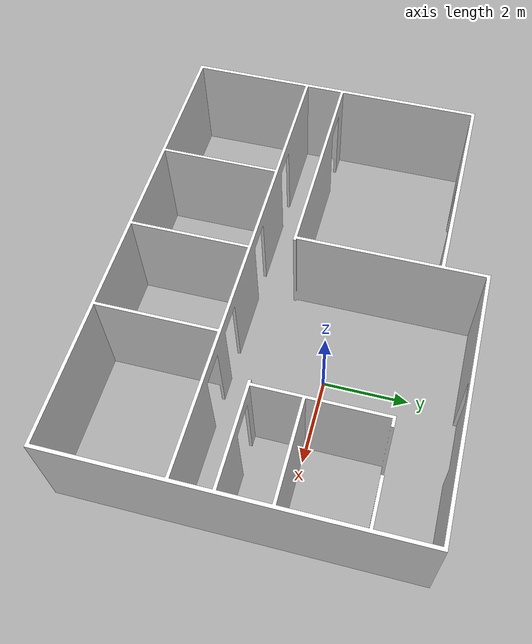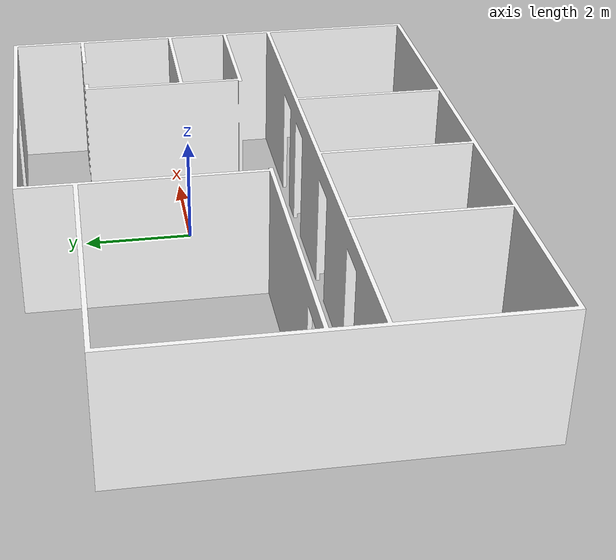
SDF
<?xml version="1.0" ?>
<sdf version="1.5">
  <model name="Office_3E">
    <link name="link">
      <collision name="collision">
        <geometry>
          <mesh>
            <uri>model://office_3E/meshes/office_3_EMPTY.dae</uri>
          </mesh>
        </geometry>
      </collision>
      <visual name="visual">
        <geometry>
          <mesh>
            <uri>model://office_3E/meshes/office_3_EMPTY.dae</uri>
          </mesh>
        </geometry>
      </visual>
    </link>
  </model>
</sdf>
